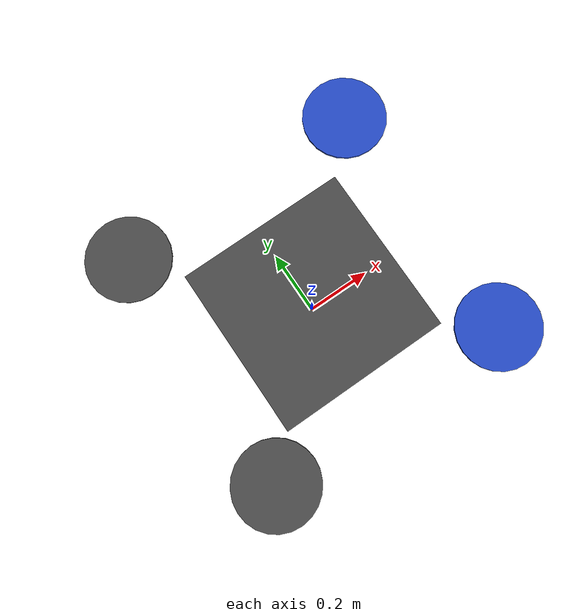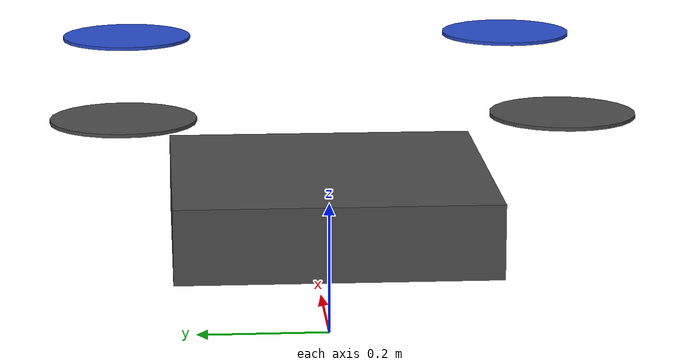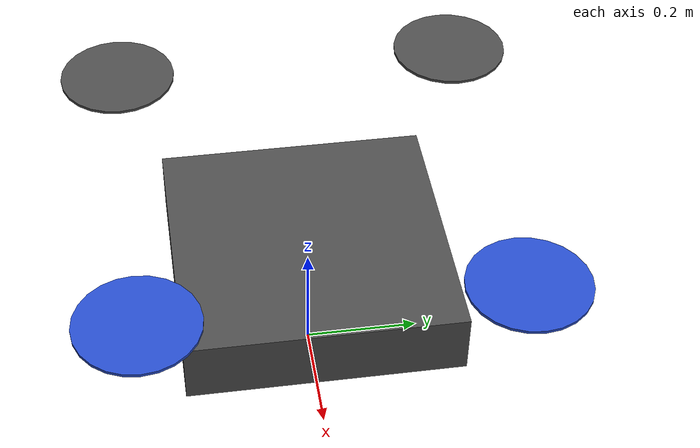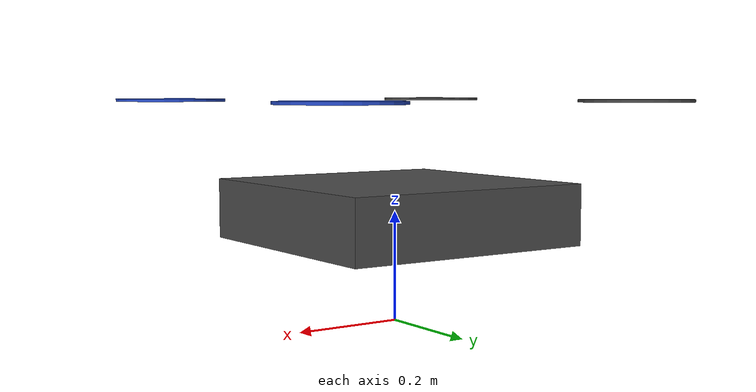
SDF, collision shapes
<sdf version='1.5'>
  <model name='tailsitter2'>
    <link name='base_link'>
      <pose>0 0 0.2 0 -0 0</pose>
      <inertial>
        <pose>0 0 0 0 -0 0</pose>
        <mass>1.6</mass>
        <inertia>
          <ixx>0.147563</ixx>
          <ixy>0</ixy>
          <ixz>0</ixz>
          <iyy>0.0458929</iyy>
          <iyz>0</iyz>
          <izz>0.1977</izz>
        </inertia>
      </inertial>
      <collision name='base_link_collision'>
        <pose>0 0 0 0 -0 0</pose>
        <geometry>
          <box>
            <size>0.47 0.47 0.11</size>
          </box>
        </geometry>
        <surface>
          <contact>
            <ode>
              <max_vel>10</max_vel>
              <min_depth>0.01</min_depth>
            </ode>
          </contact>
          <friction>
            <ode/>
          </friction>
        </surface>
      </collision>
      <visual name='base_link_visual'>
        <pose>0 0 0.5 0 -1.57075 3.14159</pose>
        <geometry>
          <mesh>
            <scale>0.001 0.001 0.001</scale>
            <uri>model://tailsitter/meshes/pacflyer_s100_mockup.dae</uri>
          </mesh>
        </geometry>
        <material>
          <script>
            <name>Gazebo/DarkGrey</name>
            <uri>__default__</uri>
          </script>
        </material>
      </visual>
      <gravity>1</gravity>
      <velocity_decay/>
      <self_collide>0</self_collide>
    </link>
    <link name='tailsitter/imu_link'>
      <pose>0 0 0 0 -0 0</pose>
      <inertial>
        <pose>0 0 0 0 -0 0</pose>
        <mass>0.015</mass>
        <inertia>
          <ixx>1e-05</ixx>
          <ixy>0</ixy>
          <ixz>0</ixz>
          <iyy>1e-05</iyy>
          <iyz>0</iyz>
          <izz>1e-05</izz>
        </inertia>
      </inertial>
    </link>
    <joint name='tailsitter/imu_joint' type='revolute'>
      <child>tailsitter/imu_link</child>
      <parent>base_link</parent>
      <axis>
        <xyz>1 0 0</xyz>
        <limit>
          <lower>0</lower>
          <upper>0</upper>
          <effort>0</effort>
          <velocity>0</velocity>
        </limit>
        <dynamics>
          <spring_reference>0</spring_reference>
          <spring_stiffness>0</spring_stiffness>
        </dynamics>
        <use_parent_model_frame>1</use_parent_model_frame>
      </axis>
    </joint>
    <link name='rotor_0'>
      <pose>0.3 -0.3 0.4 0 -0 0</pose>
      <inertial>
        <pose>0 0 0 0 -0 0</pose>
        <mass>0.005</mass>
        <inertia>
          <ixx>9.75e-07</ixx>
          <ixy>0</ixy>
          <ixz>0</ixz>
          <iyy>0.000166704</iyy>
          <iyz>0</iyz>
          <izz>0.000167604</izz>
        </inertia>
      </inertial>
      <collision name='rotor_0_collision'>
        <pose>0 0 0 0 -0 0</pose>
        <geometry>
          <cylinder>
            <length>0.005</length>
            <radius>0.1</radius>
          </cylinder>
        </geometry>
        <surface>
          <contact>
            <ode/>
          </contact>
          <friction>
            <ode/>
          </friction>
        </surface>
      </collision>
      <visual name='rotor_0_visual'>
        <pose>0 0 0 0 -0 0</pose>
        <geometry>
          <mesh>
            <scale>1 1 1</scale>
            <uri>model://tailsitter/meshes/iris_prop_ccw.dae</uri>
          </mesh>
        </geometry>
        <material>
          <script>
            <name>Gazebo/Blue</name>
            <uri>__default__</uri>
          </script>
        </material>
      </visual>
      <gravity>1</gravity>
      <velocity_decay/>
      <self_collide>0</self_collide>
    </link>
    <joint name='rotor_0_joint' type='revolute'>
      <child>rotor_0</child>
      <parent>base_link</parent>
      <axis>
        <xyz>0 0 1</xyz>
        <limit>
          <lower>-1e+16</lower>
          <upper>1e+16</upper>
        </limit>
        <dynamics>
          <spring_reference>0</spring_reference>
          <spring_stiffness>0</spring_stiffness>
        </dynamics>
        <use_parent_model_frame>1</use_parent_model_frame>
      </axis>
    </joint>
    <link name='rotor_1'>
      <pose>-0.3 0.3 0.4 0 -0 0</pose>
      <inertial>
        <pose>0 0 0 0 -0 0</pose>
        <mass>0.005</mass>
        <inertia>
          <ixx>9.75e-07</ixx>
          <ixy>0</ixy>
          <ixz>0</ixz>
          <iyy>0.000166704</iyy>
          <iyz>0</iyz>
          <izz>0.000167604</izz>
        </inertia>
      </inertial>
      <collision name='rotor_1_collision'>
        <pose>0 0 0 0 -0 0</pose>
        <geometry>
          <cylinder>
            <length>0.005</length>
            <radius>0.1</radius>
          </cylinder>
        </geometry>
        <surface>
          <contact>
            <ode/>
          </contact>
          <friction>
            <ode/>
          </friction>
        </surface>
      </collision>
      <visual name='rotor_1_visual'>
        <pose>0 0 0 0 -0 0</pose>
        <geometry>
          <mesh>
            <scale>1 1 1</scale>
            <uri>model://tailsitter/meshes/iris_prop_ccw.dae</uri>
          </mesh>
        </geometry>
        <material>
          <script>
            <name>Gazebo/DarkGrey</name>
            <uri>__default__</uri>
          </script>
        </material>
      </visual>
      <gravity>1</gravity>
      <velocity_decay/>
      <self_collide>0</self_collide>
    </link>
    <joint name='rotor_1_joint' type='revolute'>
      <child>rotor_1</child>
      <parent>base_link</parent>
      <axis>
        <xyz>0 0 1</xyz>
        <limit>
          <lower>-1e+16</lower>
          <upper>1e+16</upper>
        </limit>
        <dynamics>
          <spring_reference>0</spring_reference>
          <spring_stiffness>0</spring_stiffness>
        </dynamics>
        <use_parent_model_frame>1</use_parent_model_frame>
      </axis>
    </joint>
    <link name='rotor_2'>
      <pose>0.3 0.3 0.4 0 -0 0</pose>
      <inertial>
        <pose>0 0 0 0 -0 0</pose>
        <mass>0.005</mass>
        <inertia>
          <ixx>9.75e-07</ixx>
          <ixy>0</ixy>
          <ixz>0</ixz>
          <iyy>0.000166704</iyy>
          <iyz>0</iyz>
          <izz>0.000167604</izz>
        </inertia>
      </inertial>
      <collision name='rotor_2_collision'>
        <pose>0 0 0 0 -0 0</pose>
        <geometry>
          <cylinder>
            <length>0.005</length>
            <radius>0.1</radius>
          </cylinder>
        </geometry>
        <surface>
          <contact>
            <ode/>
          </contact>
          <friction>
            <ode/>
          </friction>
        </surface>
      </collision>
      <visual name='rotor_2_visual'>
        <pose>0 0 0 0 -0 0</pose>
        <geometry>
          <mesh>
            <scale>1 1 1</scale>
            <uri>model://tailsitter/meshes/iris_prop_cw.dae</uri>
          </mesh>
        </geometry>
        <material>
          <script>
            <name>Gazebo/Blue</name>
            <uri>__default__</uri>
          </script>
        </material>
      </visual>
      <gravity>1</gravity>
      <velocity_decay/>
      <self_collide>0</self_collide>
    </link>
    <joint name='rotor_2_joint' type='revolute'>
      <child>rotor_2</child>
      <parent>base_link</parent>
      <axis>
        <xyz>0 0 1</xyz>
        <limit>
          <lower>-1e+16</lower>
          <upper>1e+16</upper>
        </limit>
        <dynamics>
          <spring_reference>0</spring_reference>
          <spring_stiffness>0</spring_stiffness>
        </dynamics>
        <use_parent_model_frame>1</use_parent_model_frame>
      </axis>
    </joint>
    <link name='rotor_3'>
      <pose>-0.3 -0.3 0.4 0 -0 0</pose>
      <inertial>
        <pose>0 0 0 0 -0 0</pose>
        <mass>0.005</mass>
        <inertia>
          <ixx>9.75e-07</ixx>
          <ixy>0</ixy>
          <ixz>0</ixz>
          <iyy>0.000166704</iyy>
          <iyz>0</iyz>
          <izz>0.000167604</izz>
        </inertia>
      </inertial>
      <collision name='rotor_3_collision'>
        <pose>0 0 0 0 -0 0</pose>
        <geometry>
          <cylinder>
            <length>0.005</length>
            <radius>0.1</radius>
          </cylinder>
        </geometry>
        <surface>
          <contact>
            <ode/>
          </contact>
          <friction>
            <ode/>
          </friction>
        </surface>
      </collision>
      <visual name='rotor_3_visual'>
        <pose>0 0 0 0 -0 0</pose>
        <geometry>
          <mesh>
            <scale>1 1 1</scale>
            <uri>model://tailsitter/meshes/iris_prop_cw.dae</uri>
          </mesh>
        </geometry>
        <material>
          <script>
            <name>Gazebo/DarkGrey</name>
            <uri>__default__</uri>
          </script>
        </material>
      </visual>
      <gravity>1</gravity>
      <velocity_decay/>
      <self_collide>0</self_collide>
    </link>
    <joint name='rotor_3_joint' type='revolute'>
      <child>rotor_3</child>
      <parent>base_link</parent>
      <axis>
        <xyz>0 0 1</xyz>
        <limit>
          <lower>-1e+16</lower>
          <upper>1e+16</upper>
        </limit>
        <dynamics>
          <spring_reference>0</spring_reference>
          <spring_stiffness>0</spring_stiffness>
        </dynamics>
        <use_parent_model_frame>1</use_parent_model_frame>
      </axis>
    </joint>
    <link name="left_elevon">
      <inertial>
        <mass>0.00000001</mass>
        <inertia>
          <ixx>0.000001</ixx>
          <ixy>0.0</ixy>
          <iyy>0.000001</iyy>
          <ixz>0.0</ixz>
          <iyz>0.0</iyz>
          <izz>0.000001</izz>
        </inertia>
        <pose>0 0.3 -0.3 0.00 0 0.0</pose>
      </inertial>
    </link>
    <link name="right_elevon">
      <inertial>
        <mass>0.00000001</mass>
        <inertia>
          <ixx>0.000001</ixx>
          <ixy>0.0</ixy>
          <iyy>0.000001</iyy>
          <ixz>0.0</ixz>
          <iyz>0.0</iyz>
          <izz>0.000001</izz>
        </inertia>
        <pose>0 -0.3 -0.3 0.00 0 0.0</pose>
      </inertial>
    </link>
    <link name="elevator">
      <inertial>
        <mass>0.00000001</mass>
        <inertia>
          <ixx>0.000001</ixx>
          <ixy>0.0</ixy>
          <iyy>0.000001</iyy>
          <ixz>0.0</ixz>
          <iyz>0.0</iyz>
          <izz>0.000001</izz>
        </inertia>
        <pose>0 0 -0.5 0.00 0 0.0</pose>
      </inertial>
    </link>
    <link name="rudder">
      <inertial>
        <mass>0.00000001</mass>
        <inertia>
          <ixx>0.000001</ixx>
          <ixy>0.0</ixy>
          <iyy>0.000001</iyy>
          <ixz>0.0</ixz>
          <iyz>0.0</iyz>
          <izz>0.000001</izz>
        </inertia>
        <pose>0 0 -0.5 0.00 0 0.0</pose>
      </inertial>
    </link>
    <joint name='left_elevon_joint' type='revolute'>
      <parent>base_link</parent>
      <child>left_elevon</child>
      <pose>0 0.3 -0.25 0.00 0 0.0</pose>
      <axis>
        <xyz>0 1 0</xyz>
        <limit>
          <!-- -30/+30 deg. -->
          <lower>-0.53</lower>
          <upper>0.53</upper>
        </limit>
        <dynamics>
          <damping>1.000</damping>
        </dynamics>
      </axis>
      <physics>
        <ode>
          <implicit_spring_damper>1</implicit_spring_damper>
        </ode>
      </physics>
    </joint>
    <joint name='right_elevon_joint' type='revolute'>
      <parent>base_link</parent>
      <child>right_elevon</child>
      <pose>0 -0.3 -0.25 0.00 0 0.0</pose>
      <axis>
        <xyz>0 1 0</xyz>
        <limit>
          <!-- -30/+30 deg. -->
          <lower>-0.53</lower>
          <upper>0.53</upper>
        </limit>
        <dynamics>
          <damping>1.000</damping>
        </dynamics>
      </axis>
      <physics>
        <ode>
          <implicit_spring_damper>1</implicit_spring_damper>
        </ode>
      </physics>
    </joint>
    <joint name='elevator_joint' type='revolute'>
      <parent>base_link</parent>
      <child>elevator</child>
      <pose>0 0 -0.5 0.00 0 0.0</pose>
      <axis>
        <xyz>0 1 0</xyz>
        <limit>
          <!-- -30/+30 deg. -->
          <lower>-0.53</lower>
          <upper>0.53</upper>
        </limit>
        <dynamics>
          <damping>1.000</damping>
        </dynamics>
      </axis>
      <physics>
        <ode>
          <implicit_spring_damper>1</implicit_spring_damper>
        </ode>
      </physics>
    </joint>
    <joint name='rudder_joint' type='revolute'>
      <parent>base_link</parent>
      <child>rudder</child>
      <pose>0 0 -0.5 0.00 0 0.0</pose>
      <axis>
        <xyz>1 0 0</xyz>
        <limit>
          <!-- -30/+30 deg. -->
          <lower>-0.01</lower>
          <upper>0.01</upper>
        </limit>
        <dynamics>
          <damping>1.000</damping>
        </dynamics>
      </axis>
      <physics>
        <ode>
          <implicit_spring_damper>1</implicit_spring_damper>
        </ode>
      </physics>
    </joint>

    <plugin name="left_wing" filename="libLiftDragPlugin.so">
      <a0>0.05984281113</a0>
      <cla>4.752798721</cla>
      <cda>0.6417112299</cda>
      <cma>-1.8</cma>
      <alpha_stall>0.6391428111</alpha_stall>
      <cla_stall>-3.85</cla_stall>
      <cda_stall>-0.9233984055</cda_stall>
      <cma_stall>0</cma_stall>
      <cp>0 0.3 0.0</cp>
      <area>0.15</area>
      <air_density>1.2041</air_density>
      <forward>0 0 1</forward>
      <upward>-1 0 0</upward>
      <link_name>base_link</link_name>
      <control_joint_name>
        left_elevon_joint
      </control_joint_name>
      <control_joint_rad_to_cl>-0.5</control_joint_rad_to_cl>
    </plugin>
    <plugin name="right_wing" filename="libLiftDragPlugin.so">
      <a0>0.05984281113</a0>
      <cla>4.752798721</cla>
      <cda>0.6417112299</cda>
      <cma>-1.8</cma>
      <alpha_stall>0.6391428111</alpha_stall>
      <cla_stall>-3.85</cla_stall>
      <cda_stall>-0.9233984055</cda_stall>
      <cma_stall>0</cma_stall>
      <cp>0 -0.3 -0.0</cp>
      <area>0.15</area>
      <air_density>1.2041</air_density>
      <forward>0 0 1</forward>
      <upward>-1 0 0</upward>
      <link_name>base_link</link_name>
      <control_joint_name>
        right_elevon_joint
      </control_joint_name>
      <control_joint_rad_to_cl>-0.5</control_joint_rad_to_cl>
    </plugin>
    <plugin name="elevator" filename="libLiftDragPlugin.so">
      <a0>0.05984281113</a0>
      <cla>4.752798721</cla>
      <cda>0.6417112299</cda>
      <cma>-1.8</cma>
      <alpha_stall>0.7391428111</alpha_stall>
      <cla_stall>-3.85</cla_stall>
      <cda_stall>-0.9233984055</cda_stall>
      <cma_stall>0</cma_stall>
      <cp>0 0 -0.5</cp>
      <area>0.005</area>
      <air_density>1.2041</air_density>
      <forward>0 0 1</forward>
      <upward>-1 0 0</upward>
      <link_name>base_link</link_name>
      <control_joint_name>
        elevator_joint
      </control_joint_name>
    </plugin>
    <plugin name="rudder" filename="libLiftDragPlugin.so">
      <a0>0.0</a0>
      <cla>4.752798721</cla>
      <cda>0.6417112299</cda>
      <cma>-1.8</cma>
      <alpha_stall>0.3391428111</alpha_stall>
      <cla_stall>-3.85</cla_stall>
      <cda_stall>-0.9233984055</cda_stall>
      <cma_stall>0</cma_stall>
      <cp>-0.1 0 -0.5</cp>
      <area>0.05</area>
      <air_density>1.2041</air_density>
      <forward>0 0 1</forward>
      <upward>0 1 0</upward>
      <link_name>base_link</link_name>
    </plugin>
   <plugin name='rosbag' filename='librotors_gazebo_multirotor_base_plugin.so'>
      <robotNamespace></robotNamespace>
      <linkName>base_link</linkName>
      <rotorVelocitySlowdownSim>10</rotorVelocitySlowdownSim>
    </plugin>
    <plugin name='front_right_motor_model' filename='librotors_gazebo_motor_model.so'>
      <robotNamespace></robotNamespace>
      <jointName>rotor_0_joint</jointName>
      <linkName>rotor_0</linkName>
      <turningDirection>ccw</turningDirection>
      <timeConstantUp>0.0125</timeConstantUp>
      <timeConstantDown>0.025</timeConstantDown>
      <maxRotVelocity>2500</maxRotVelocity>
      <motorConstant>8.54858e-06</motorConstant>
      <momentConstant>0.06</momentConstant>
      <commandSubTopic>/gazebo/command/motor_speed</commandSubTopic>
      <motorNumber>0</motorNumber>
      <rotorDragCoefficient>8.06428e-05</rotorDragCoefficient>
      <rollingMomentCoefficient>1e-06</rollingMomentCoefficient>
      <motorSpeedPubTopic>/motor_speed/0</motorSpeedPubTopic>
      <rotorVelocitySlowdownSim>1</rotorVelocitySlowdownSim>
    </plugin>
    <plugin name='back_left_motor_model' filename='librotors_gazebo_motor_model.so'>
      <robotNamespace></robotNamespace>
      <jointName>rotor_1_joint</jointName>
      <linkName>rotor_1</linkName>
      <turningDirection>ccw</turningDirection>
      <timeConstantUp>0.0125</timeConstantUp>
      <timeConstantDown>0.025</timeConstantDown>
      <maxRotVelocity>2500</maxRotVelocity>
      <motorConstant>8.54858e-06</motorConstant>
      <momentConstant>0.06</momentConstant>
      <commandSubTopic>/gazebo/command/motor_speed</commandSubTopic>
      <motorNumber>1</motorNumber>
      <rotorDragCoefficient>8.06428e-05</rotorDragCoefficient>
      <rollingMomentCoefficient>1e-06</rollingMomentCoefficient>
      <motorSpeedPubTopic>/motor_speed/1</motorSpeedPubTopic>
      <rotorVelocitySlowdownSim>1</rotorVelocitySlowdownSim>
    </plugin>
    <plugin name='front_left_motor_model' filename='librotors_gazebo_motor_model.so'>
      <robotNamespace></robotNamespace>
      <jointName>rotor_2_joint</jointName>
      <linkName>rotor_2</linkName>
      <turningDirection>cw</turningDirection>
      <timeConstantUp>0.0125</timeConstantUp>
      <timeConstantDown>0.025</timeConstantDown>
      <maxRotVelocity>2500</maxRotVelocity>
      <motorConstant>8.54858e-06</motorConstant>
      <momentConstant>0.06</momentConstant>
      <commandSubTopic>/gazebo/command/motor_speed</commandSubTopic>
      <motorNumber>2</motorNumber>
      <rotorDragCoefficient>8.06428e-05</rotorDragCoefficient>
      <rollingMomentCoefficient>1e-06</rollingMomentCoefficient>
      <motorSpeedPubTopic>/motor_speed/2</motorSpeedPubTopic>
      <rotorVelocitySlowdownSim>1</rotorVelocitySlowdownSim>
    </plugin>
    <plugin name='back_right_motor_model' filename='librotors_gazebo_motor_model.so'>
      <robotNamespace></robotNamespace>
      <jointName>rotor_3_joint</jointName>
      <linkName>rotor_3</linkName>
      <turningDirection>cw</turningDirection>
      <timeConstantUp>0.0125</timeConstantUp>
      <timeConstantDown>0.025</timeConstantDown>
      <maxRotVelocity>2500</maxRotVelocity>
      <motorConstant>8.54858e-06</motorConstant>
      <momentConstant>0.06</momentConstant>
      <commandSubTopic>/gazebo/command/motor_speed</commandSubTopic>
      <motorNumber>3</motorNumber>
      <rotorDragCoefficient>8.06428e-05</rotorDragCoefficient>
      <rollingMomentCoefficient>1e-06</rollingMomentCoefficient>
      <motorSpeedPubTopic>/motor_speed/3</motorSpeedPubTopic>
      <rotorVelocitySlowdownSim>1</rotorVelocitySlowdownSim>
    </plugin>

    <plugin name="rotor_0_blade_1" filename="libLiftDragPlugin.so">
      <a0>0.1</a0>
      <alpha_stall>1.4</alpha_stall>
      <cla>0.2500</cla>
      <cda>0.10</cda>
      <cma>0.00</cma>
      <cla_stall>-0.025</cla_stall>
      <cda_stall>0.0</cda_stall>
      <cma_stall>0.0</cma_stall>
      <area>0.2</area>
      <air_density>1.2041</air_density>
      <cp>0.084 0 0</cp>
      <forward>0 1 0</forward>
      <upward>0 0 1</upward>
      <link_name>rotor_0</link_name>
    </plugin>
    <plugin name="rotor_0_blade_2" filename="libLiftDragPlugin.so">
      <a0>0.1</a0>
      <alpha_stall>1.4</alpha_stall>
      <cla>0.2500</cla>
      <cda>0.10</cda>
      <cma>0.00</cma>
      <cla_stall>-0.025</cla_stall>
      <cda_stall>0.0</cda_stall>
      <cma_stall>0.0</cma_stall>
      <area>0.2</area>
      <air_density>1.2041</air_density>
      <cp>-0.084 0 0</cp>
      <forward>0 -1 0</forward>
      <upward>0 0 1</upward>
      <link_name>rotor_0</link_name>
    </plugin>

    <plugin name="rotor_1_blade_1" filename="libLiftDragPlugin.so">
      <a0>0.1</a0>
      <alpha_stall>1.4</alpha_stall>
      <cla>0.2500</cla>
      <cda>0.10</cda>
      <cma>0.00</cma>
      <cla_stall>-0.025</cla_stall>
      <cda_stall>0.0</cda_stall>
      <cma_stall>0.0</cma_stall>
      <area>0.2</area>
      <air_density>1.2041</air_density>
      <cp>0.084 0 0</cp>
      <forward>0 1 0</forward>
      <upward>0 0 1</upward>
      <link_name>rotor_1</link_name>
    </plugin>
    <plugin name="rotor_1_blade_2" filename="libLiftDragPlugin.so">
      <a0>0.1</a0>
      <alpha_stall>1.4</alpha_stall>
      <cla>0.2500</cla>
      <cda>0.10</cda>
      <cma>0.00</cma>
      <cla_stall>-0.025</cla_stall>
      <cda_stall>0.0</cda_stall>
      <cma_stall>0.0</cma_stall>
      <area>0.2</area>
      <air_density>1.2041</air_density>
      <cp>-0.084 0 0</cp>
      <forward>0 -1 0</forward>
      <upward>0 0 1</upward>
      <link_name>rotor_1</link_name>
    </plugin>

    <plugin name="rotor_2_blade_1" filename="libLiftDragPlugin.so">
      <a0>0.1</a0>
      <alpha_stall>1.4</alpha_stall>
      <cla>0.2500</cla>
      <cda>0.10</cda>
      <cma>0.00</cma>
      <cla_stall>-0.025</cla_stall>
      <cda_stall>0.0</cda_stall>
      <cma_stall>0.0</cma_stall>
      <area>0.2</area>
      <air_density>1.2041</air_density>
      <cp>0.084 0 0</cp>
      <forward>0 -1 0</forward>
      <upward>0 0 1</upward>
      <link_name>rotor_2</link_name>
    </plugin>
    <plugin name="rotor_2_blade_2" filename="libLiftDragPlugin.so">
      <a0>0.1</a0>
      <alpha_stall>1.4</alpha_stall>
      <cla>0.2500</cla>
      <cda>0.10</cda>
      <cma>0.00</cma>
      <cla_stall>-0.025</cla_stall>
      <cda_stall>0.0</cda_stall>
      <cma_stall>0.0</cma_stall>
      <area>0.2</area>
      <air_density>1.2041</air_density>
      <cp>-0.084 0 0</cp>
      <forward>0 1 0</forward>
      <upward>0 0 1</upward>
      <link_name>rotor_2</link_name>
    </plugin>

    <plugin name="rotor_3_blade_1" filename="libLiftDragPlugin.so">
      <a0>0.1</a0>
      <alpha_stall>1.4</alpha_stall>
      <cla>0.2500</cla>
      <cda>0.10</cda>
      <cma>0.00</cma>
      <cla_stall>-0.025</cla_stall>
      <cda_stall>0.0</cda_stall>
      <cma_stall>0.0</cma_stall>
      <area>0.2</area>
      <air_density>1.2041</air_density>
      <cp>0.084 0 0</cp>
      <forward>0 -1 0</forward>
      <upward>0 0 1</upward>
      <link_name>rotor_3</link_name>
    </plugin>
    <plugin name="rotor_3_blade_2" filename="libLiftDragPlugin.so">
      <a0>0.1</a0>
      <alpha_stall>1.4</alpha_stall>
      <cla>0.2500</cla>
      <cda>0.10</cda>
      <cma>0.00</cma>
      <cla_stall>-0.025</cla_stall>
      <cda_stall>0.0</cda_stall>
      <cma_stall>0.0</cma_stall>
      <area>0.2</area>
      <air_density>1.2041</air_density>
      <cp>-0.084 0 0</cp>
      <forward>0 1 0</forward>
      <upward>0 0 1</upward>
      <link_name>rotor_3</link_name>
    </plugin>

    <plugin name='rotors_gazebo_imu_plugin' filename='librotors_gazebo_imu_plugin.so'>
      <robotNamespace></robotNamespace>
      <linkName>tailsitter/imu_link</linkName>
      <imuTopic>/imu</imuTopic>
      <gyroscopeNoiseDensity>0.0003394</gyroscopeNoiseDensity>
      <gyroscopeRandomWalk>3.8785e-05</gyroscopeRandomWalk>
      <gyroscopeBiasCorrelationTime>1000.0</gyroscopeBiasCorrelationTime>
      <gyroscopeTurnOnBiasSigma>0.0087</gyroscopeTurnOnBiasSigma>
      <accelerometerNoiseDensity>0.004</accelerometerNoiseDensity>
      <accelerometerRandomWalk>0.006</accelerometerRandomWalk>
      <accelerometerBiasCorrelationTime>300.0</accelerometerBiasCorrelationTime>
      <accelerometerTurnOnBiasSigma>0.196</accelerometerTurnOnBiasSigma>
    </plugin>
    <plugin name='sitl_interface' filename='librotors_gazebo_sitl_interface.so'>
      <robotNamespace></robotNamespace>
      <imuSubTopic>/imu</imuSubTopic>
      <motorSpeedCommandPubTopic>/gazebo/command/motor_speed</motorSpeedCommandPubTopic>
      <fc_addr>127.0.0.1</fc_addr>
      <fc_udp_port>9003</fc_udp_port>
      <control_channels>
        <channel name="rotor0">
          <input_index>0</input_index>
          <input_offset>0</input_offset>
          <input_scaling>2500</input_scaling>
          <zero_position_disarmed>0</zero_position_disarmed>
          <zero_position_armed>0</zero_position_armed>
          <joint_control_type>velocity</joint_control_type>
          <joint_name>rotor_0_joint</joint_name>
        </channel>
        <channel name="rotor1">
          <input_index>1</input_index>
          <input_offset>0</input_offset>
          <input_scaling>2500</input_scaling>
          <zero_position_disarmed>0</zero_position_disarmed>
          <zero_position_armed>0</zero_position_armed>
          <joint_control_type>velocity</joint_control_type>
          <joint_name>rotor_1_joint</joint_name>
        </channel>
        <channel name="rotor2">
          <input_index>2</input_index>
          <input_offset>0</input_offset>
          <input_scaling>2500</input_scaling>
          <zero_position_disarmed>0</zero_position_disarmed>
          <zero_position_armed>0</zero_position_armed>
          <joint_control_type>velocity</joint_control_type>
          <joint_name>rotor_2_joint</joint_name>
        </channel>
        <channel name="rotor3">
          <input_index>3</input_index>
          <input_offset>0</input_offset>
          <input_scaling>2500</input_scaling>
          <zero_position_disarmed>0</zero_position_disarmed>
          <zero_position_armed>0</zero_position_armed>
          <joint_control_type>velocity</joint_control_type>
          <joint_name>rotor_3_joint</joint_name>
        </channel>
        <channel name="left_elevon">
          <input_index>5</input_index>
          <input_offset>0</input_offset>
          <input_scaling>1</input_scaling>
          <zero_position_disarmed>0</zero_position_disarmed>
          <zero_position_armed>0</zero_position_armed>
          <joint_control_type>position_kinematic</joint_control_type>
          <joint_name>left_elevon_joint</joint_name>
        </channel>
        <channel name="right_elevon">
          <input_index>6</input_index>
          <input_offset>0</input_offset>
          <input_scaling>1</input_scaling>
          <zero_position_disarmed>0</zero_position_disarmed>
          <zero_position_armed>0</zero_position_armed>
          <joint_control_type>position_kinematic</joint_control_type>
          <joint_name>right_elevon_joint</joint_name>
        </channel>
        <channel name="elevator">
          <input_index>7</input_index>
          <input_offset>0</input_offset>
          <input_scaling>1</input_scaling>
          <zero_position_disarmed>0</zero_position_disarmed>
          <zero_position_armed>0</zero_position_armed>
          <joint_control_type>position_kinematic</joint_control_type>
          <joint_name>elevator_joint</joint_name>
        </channel>
      </control_channels>
      <left_elevon_joint>
        left_elevon_joint
      </left_elevon_joint>
      <right_elevon_joint>
        right_elevon_joint
      </right_elevon_joint>
      <elevator_joint>
        elevator_joint
      </elevator_joint>
    </plugin>
    <static>0</static>
  </model>
</sdf>
